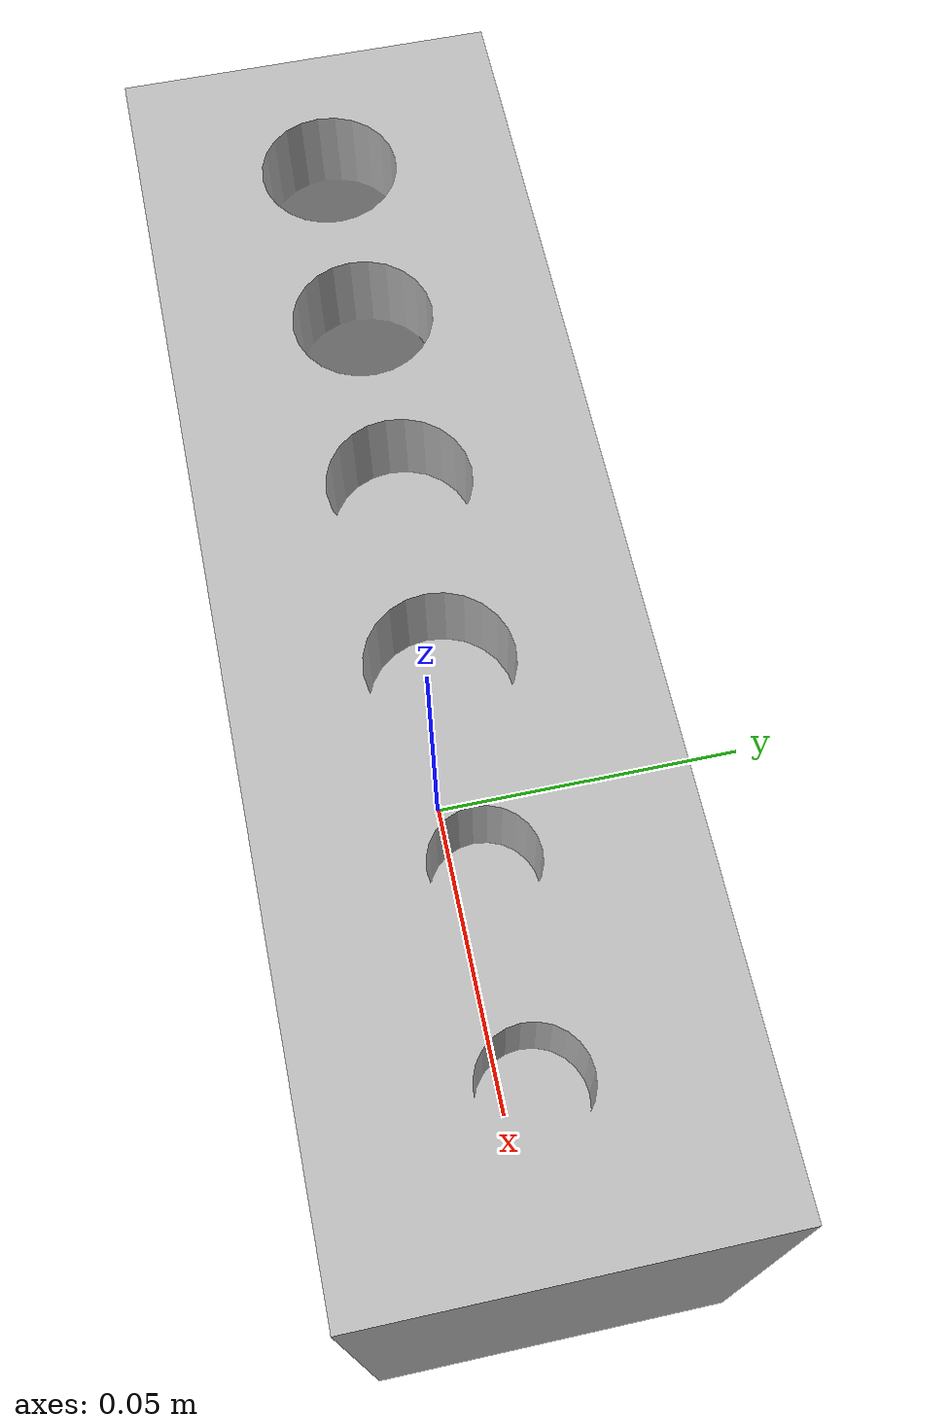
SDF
<?xml version="1.0"?>
<sdf version="1.10">
  <model name="cylinder_holder">
    <static>true</static>
    <link name="base_link">
      <inertial>
        <pose>0.000000 0.000000 0.040000 0 0 0</pose>
        <mass>0.2500</mass>
        <inertia>
          <ixx>0.00018542</ixx><ixy>0</ixy><ixz>0</ixz>
          <iyy>0.00070052</iyy><iyz>0</iyz>
          <izz>0.00061927</izz>
        </inertia>
      </inertial>
      <collision name="collision">
        <pose>0.000000 0.000000 0.040000 0 0 0</pose>
        <geometry>
          <box><size>0.165000 0.050000 0.080000</size></box>
        </geometry>
        <surface>
          <friction><ode><mu>0.9</mu><mu2>0.9</mu2></ode></friction>
        </surface>
      </collision>
      <visual name="visual">
        <geometry>
          <mesh><uri>model://cylinder_holder/meshes/cylinder_holder.obj</uri></mesh>
        </geometry>
      </visual>
    </link>
  </model>
</sdf>
